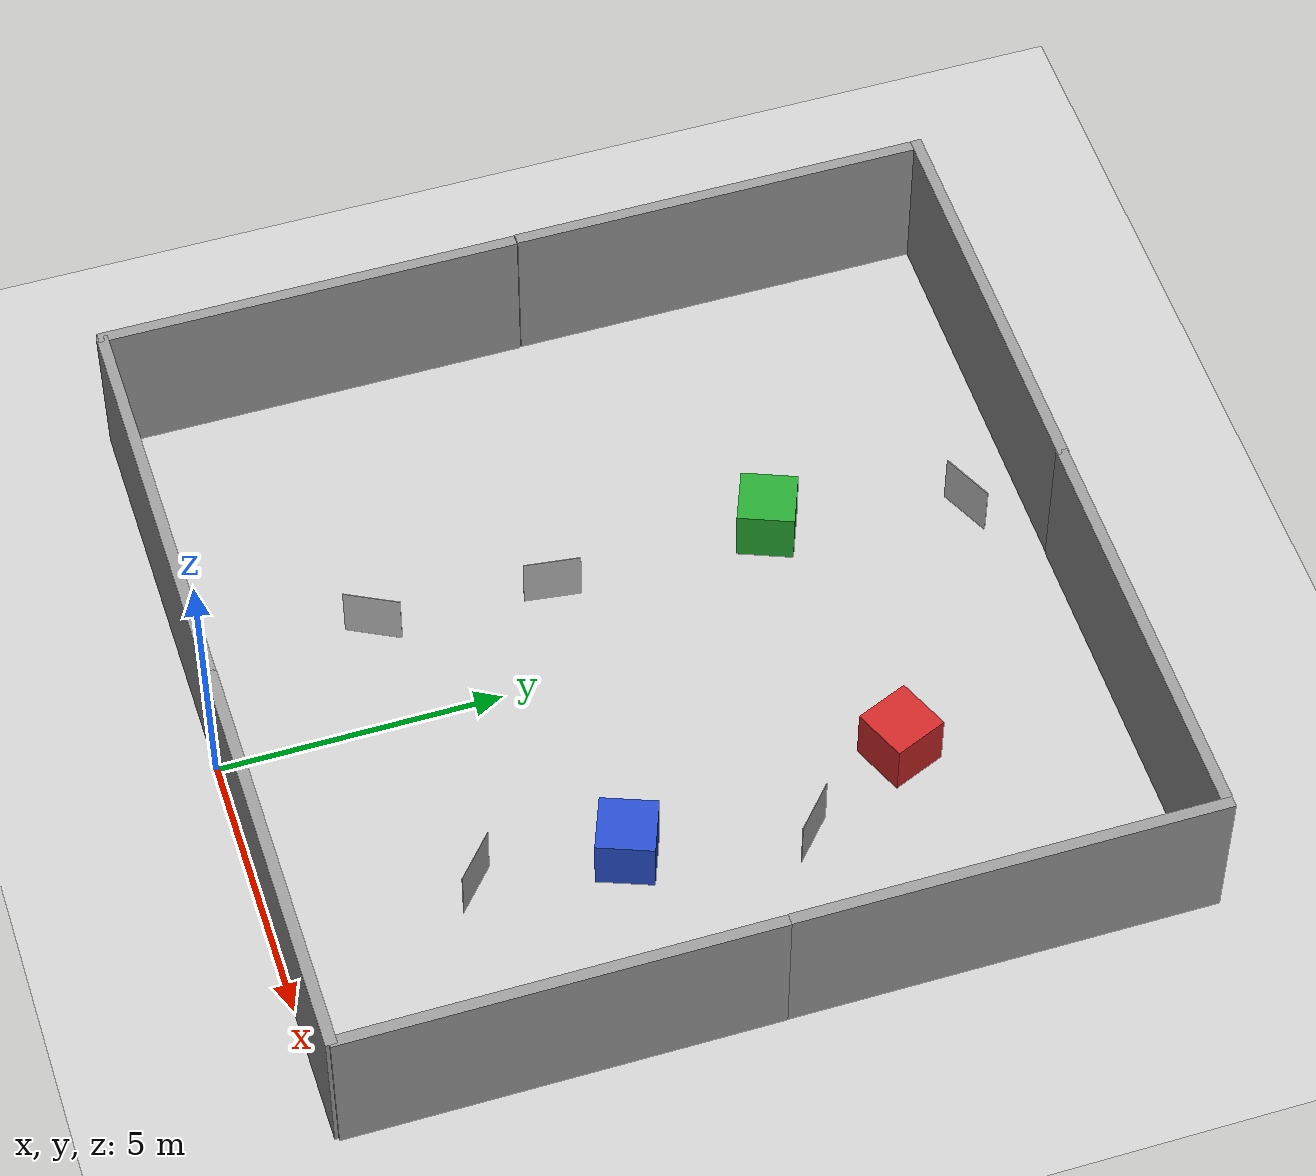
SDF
<sdf version="1.7">
 <world name="default">
  <light name="sun" type="directional">
   <pose>0 0 10 0 -0 0</pose>
   <diffuse>0.8 0.8 0.8 1</diffuse>
   <specular>0.2 0.2 0.2 1</specular>
   <attenuation>
    <range>1000</range>
    <constant>0.9</constant>
    <linear>0.01</linear>
    <quadratic>0.001</quadratic>
   </attenuation>
   <direction>-0.5 0.1 -0.9</direction>
   <spot><inner_angle>0</inner_angle><outer_angle>0</outer_angle><falloff>0</falloff></spot>
  </light>
  <model name="ground_plane">
   <static>1</static>
   <link name="link">
    <collision name="collision">
     <geometry><plane><normal>0 0 1</normal><size>100 100</size></plane></geometry>
     <surface>
      <contact><collide_bitmask>65535</collide_bitmask></contact>
      <friction><ode><mu>100</mu><mu2>50</mu2></ode></friction>
     </surface>
    </collision>
    <visual name="visual">
     <cast_shadows>0</cast_shadows>
     <geometry><plane><normal>0 0 1</normal><size>100 100</size></plane></geometry>
     <material>
      <script><uri>file://media/materials/scripts/gazebo.material</uri><name>Gazebo/Grey</name></script>
     </material>
    </visual>
   </link>
  </model>
  <gravity>0 0 -9.8</gravity>
  <magnetic_field>6e-06 2.3e-05 -4.2e-05</magnetic_field>
  <atmosphere type="adiabatic"/>
  <physics type="ode">
   <max_step_size>0.001</max_step_size>
   <real_time_factor>1</real_time_factor>
   <real_time_update_rate>1000</real_time_update_rate>
  </physics>
  <scene><ambient>0.4 0.4 0.4 1</ambient><background>0.7 0.7 0.7 1</background><shadows>1</shadows></scene>
  <spherical_coordinates>
   <surface_model>EARTH_WGS84</surface_model>
   <latitude_deg>0</latitude_deg>
   <longitude_deg>0</longitude_deg>
   <elevation>0</elevation>
   <heading_deg>0</heading_deg>
  </spherical_coordinates>
  <model name="grey_wall">
   <static>1</static>
   <link name="link">
    <pose>0 0 1.4 0 -0 0</pose>
    <collision name="collision"><geometry><box><size>7.5 0.2 2.8</size></box></geometry></collision>
    <visual name="visual">
     <cast_shadows>0</cast_shadows>
     <geometry><box><size>7.5 0.2 2.8</size></box></geometry>
     <material>
      <script>
       <uri>model://grey_wall/materials/scripts</uri>
       <uri>model://grey_wall/materials/textures</uri>
       <name>vrc/grey_wall</name>
      </script>
     </material>
    </visual>
   </link>
   <pose>3.76571 0.095145 0 0 -0 0</pose>
  </model>
  <model name="grey_wall_0">
   <static>1</static>
   <link name="link">
    <pose>0 0 1.4 0 -0 0</pose>
    <collision name="collision"><geometry><box><size>7.5 0.2 2.8</size></box></geometry></collision>
    <visual name="visual">
     <cast_shadows>0</cast_shadows>
     <geometry><box><size>7.5 0.2 2.8</size></box></geometry>
     <material>
      <script>
       <uri>model://grey_wall/materials/scripts</uri>
       <uri>model://grey_wall/materials/textures</uri>
       <name>vrc/grey_wall</name>
      </script>
     </material>
    </visual>
   </link>
   <pose>-3.71323 0.089453 0 0 -0 0</pose>
  </model>
  <model name="grey_wall_0_clone">
   <static>1</static>
   <link name="link">
    <pose>0 0 1.4 0 -0 0</pose>
    <collision name="collision"><geometry><box><size>7.5 0.2 2.8</size></box></geometry></collision>
    <visual name="visual">
     <cast_shadows>0</cast_shadows>
     <geometry><box><size>7.5 0.2 2.8</size></box></geometry>
     <material>
      <script>
       <uri>model://grey_wall/materials/scripts</uri>
       <uri>model://grey_wall/materials/textures</uri>
       <name>vrc/grey_wall</name>
      </script>
     </material>
    </visual>
   </link>
   <pose>-7.43767 3.76713 0 0 0 -1.57174</pose>
  </model>
  <model name="grey_wall_0_clone_clone">
   <static>1</static>
   <link name="link">
    <pose>0 0 1.4 0 -0 0</pose>
    <collision name="collision"><geometry><box><size>7.5 0.2 2.8</size></box></geometry></collision>
    <visual name="visual">
     <cast_shadows>0</cast_shadows>
     <geometry><box><size>7.5 0.2 2.8</size></box></geometry>
     <material>
      <script>
       <uri>model://grey_wall/materials/scripts</uri>
       <uri>model://grey_wall/materials/textures</uri>
       <name>vrc/grey_wall</name>
      </script>
     </material>
    </visual>
   </link>
   <pose>-7.44468 11.2816 0 0 0 -1.57174</pose>
  </model>
  <model name="grey_wall_0_clone_0">
   <static>1</static>
   <link name="link">
    <pose>0 0 1.4 0 -0 0</pose>
    <collision name="collision"><geometry><box><size>7.5 0.2 2.8</size></box></geometry></collision>
    <visual name="visual">
     <cast_shadows>0</cast_shadows>
     <geometry><box><size>7.5 0.2 2.8</size></box></geometry>
     <material>
      <script>
       <uri>model://grey_wall/materials/scripts</uri>
       <uri>model://grey_wall/materials/textures</uri>
       <name>vrc/grey_wall</name>
      </script>
     </material>
    </visual>
   </link>
   <pose>-3.7977 14.9733 0 0 -0 0</pose>
  </model>
  <model name="grey_wall_0_clone_1">
   <static>1</static>
   <link name="link">
    <pose>0 0 1.4 0 -0 0</pose>
    <collision name="collision"><geometry><box><size>7.5 0.2 2.8</size></box></geometry></collision>
    <visual name="visual">
     <cast_shadows>0</cast_shadows>
     <geometry><box><size>7.5 0.2 2.8</size></box></geometry>
     <material>
      <script>
       <uri>model://grey_wall/materials/scripts</uri>
       <uri>model://grey_wall/materials/textures</uri>
       <name>vrc/grey_wall</name>
      </script>
     </material>
    </visual>
   </link>
   <pose>3.61881 14.9619 0 0 -0 0</pose>
  </model>
  <model name="grey_wall_0_clone_clone_clone">
   <static>1</static>
   <link name="link">
    <pose>0 0 1.4 0 -0 0</pose>
    <collision name="collision"><geometry><box><size>7.5 0.2 2.8</size></box></geometry></collision>
    <visual name="visual">
     <cast_shadows>0</cast_shadows>
     <geometry><box><size>7.5 0.2 2.8</size></box></geometry>
     <material>
      <script>
       <uri>model://grey_wall/materials/scripts</uri>
       <uri>model://grey_wall/materials/textures</uri>
       <name>vrc/grey_wall</name>
      </script>
     </material>
    </visual>
   </link>
   <pose>7.46365 11.3004 0 0 0 -1.57174</pose>
  </model>
  <model name="grey_wall_0_clone_clone_clone_0">
   <static>1</static>
   <link name="link">
    <pose>0 0 1.4 0 -0 0</pose>
    <collision name="collision"><geometry><box><size>7.5 0.2 2.8</size></box></geometry></collision>
    <visual name="visual">
     <cast_shadows>0</cast_shadows>
     <geometry><box><size>7.5 0.2 2.8</size></box></geometry>
     <material>
      <script>
       <uri>model://grey_wall/materials/scripts</uri>
       <uri>model://grey_wall/materials/textures</uri>
       <name>vrc/grey_wall</name>
      </script>
     </material>
    </visual>
   </link>
   <pose>7.46364 3.8115 0 0 0 -1.57174</pose>
  </model>
  <model name="Red_Box">
   <link name="link">
    <inertial>
     <mass>1</mass>
     <inertia>
      <ixx>0.166667</ixx>
      <ixy>0</ixy>
      <ixz>0</ixz>
      <iyy>0.166667</iyy>
      <iyz>0</iyz>
      <izz>0.166667</izz>
     </inertia>
    </inertial>
    <pose>0 0 0 0 -0 0.393269</pose>
    <visual name="visual">
     <geometry><box><size>1 1 1</size></box></geometry>
     <material>
      <script><name>Gazebo/Red</name><uri>file://media/materials/scripts/gazebo.material</uri></script>
      <shader type="pixel"><normal_map>__default__</normal_map></shader>
      <ambient>1 0 0 1</ambient>
      <diffuse>1 0 0 1</diffuse>
      <specular>0.1 0.1 0.1 1</specular>
      <emissive>0 0 0 1</emissive>
     </material>
    </visual>
    <collision name="collision">
     <geometry><box><size>1 1 1</size></box></geometry>
     <surface>
      <friction>
       <ode><mu>1</mu><mu2>1</mu2><fdir1>0 0 0</fdir1><slip1>0</slip1><slip2>0</slip2></ode>
       <torsional>
        <coefficient>1</coefficient>
        <patch_radius>0</patch_radius>
        <surface_radius>0</surface_radius>
        <use_patch_radius>1</use_patch_radius>
        <ode><slip>0</slip></ode>
       </torsional>
      </friction>
      <bounce><restitution_coefficient>0</restitution_coefficient><threshold>1e+06</threshold></bounce>
      <contact>
       <collide_without_contact>0</collide_without_contact>
       <collide_without_contact_bitmask>1</collide_without_contact_bitmask>
       <collide_bitmask>1</collide_bitmask>
       <ode>
        <soft_cfm>0</soft_cfm>
        <soft_erp>0.2</soft_erp>
        <kp>1e+13</kp>
        <kd>1</kd>
        <max_vel>0.01</max_vel>
        <min_depth>0</min_depth>
       </ode>
       <bullet>
        <split_impulse>1</split_impulse>
        <split_impulse_penetration_threshold>-0.01</split_impulse_penetration_threshold>
        <soft_cfm>0</soft_cfm>
        <soft_erp>0.2</soft_erp>
        <kp>1e+13</kp>
        <kd>1</kd>
       </bullet>
      </contact>
     </surface>
    </collision>
   </link>
   <static>0</static>
   <pose>3.15064 11.0266 0.499995 9e-06 4e-06 -4e-06</pose>
  </model>
  <model name="Apriltag36_11_00000">
   <link name="main">
    <visual name="main_Visual">
     <geometry><box><size>1 1 0.01</size></box></geometry>
     <material>
      <script>
       <uri>model://Apriltag36_11_00000/materials/scripts</uri>
       <uri>model://Apriltag36_11_00000/materials/textures</uri>
       <name>Apriltag36_11_00000</name>
      </script>
      <shader type="pixel"/>
     </material>
    </visual>
   </link>
   <static>1</static>
   <pose>-1.95509 3.28393 0.505621 0.482204 1.56881 1.3e-05</pose>
  </model>
  <model name="Apriltag36_11_00001">
   <link name="main">
    <visual name="main_Visual">
     <geometry><box><size>1 1 0.01</size></box></geometry>
     <material>
      <script>
       <uri>model://Apriltag36_11_00001/materials/scripts</uri>
       <uri>model://Apriltag36_11_00001/materials/textures</uri>
       <name>Apriltag36_11_00001</name>
      </script>
      <shader type="pixel"/>
     </material>
    </visual>
   </link>
   <static>1</static>
   <pose>3.61877 3.48045 0.480635 4e-06 -1.56711 0.854821</pose>
  </model>
  <model name="Apriltag36_11_00003">
   <link name="main">
    <visual name="main_Visual">
     <geometry><box><size>1 1 0.01</size></box></geometry>
     <material>
      <script>
       <uri>model://Apriltag36_11_00003/materials/scripts</uri>
       <uri>model://Apriltag36_11_00003/materials/textures</uri>
       <name>Apriltag36_11_00003</name>
      </script>
      <shader type="pixel"/>
     </material>
    </visual>
   </link>
   <static>1</static>
   <pose>-1.78842 6.43714 0.491476 -3.01365 1.56828 3.14159</pose>
  </model>
  <model name="Apriltag36_11_00004">
   <link name="main">
    <visual name="main_Visual">
     <geometry><box><size>1 1 0.01</size></box></geometry>
     <material>
      <script>
       <uri>model://Apriltag36_11_00004/materials/scripts</uri>
       <uri>model://Apriltag36_11_00004/materials/textures</uri>
       <name>Apriltag36_11_00004</name>
      </script>
      <shader type="pixel"/>
     </material>
    </visual>
   </link>
   <static>1</static>
   <pose>4.34905 9.09316 0.465172 2.4e-05 -1.56884 0.837726</pose>
  </model>
  <model name="Apriltag36_11_00005">
   <link name="main">
    <visual name="main_Visual">
     <geometry><box><size>1 1 0.01</size></box></geometry>
     <material>
      <script>
       <uri>model://Apriltag36_11_00005/materials/scripts</uri>
       <uri>model://Apriltag36_11_00005/materials/textures</uri>
       <name>Apriltag36_11_00005</name>
      </script>
      <shader type="pixel"/>
     </material>
    </visual>
   </link>
   <static>1</static>
   <pose>-1.38048 13.8304 0.502502 1.56337 0 0.430413</pose>
  </model>
  <model name="Green_Box">
   <link name="link">
    <inertial>
     <mass>1</mass>
     <inertia>
      <ixx>0.166667</ixx>
      <ixy>0</ixy>
      <ixz>0</ixz>
      <iyy>0.166667</iyy>
      <iyz>0</iyz>
      <izz>0.166667</izz>
     </inertia>
    </inertial>
    <visual name="visual">
     <geometry><box><size>1 1 1</size></box></geometry>
     <material>
      <script><name>Gazebo/Green</name><uri>file://media/materials/scripts/gazebo.material</uri></script>
      <shader type="pixel"><normal_map>__default__</normal_map></shader>
      <ambient>0 1 0 1</ambient>
      <diffuse>0 1 0 1</diffuse>
      <specular>0.1 0.1 0.1 1</specular>
      <emissive>0 0 0 1</emissive>
     </material>
    </visual>
    <collision name="collision">
     <geometry><box><size>1 1 1</size></box></geometry>
     <surface>
      <friction>
       <ode><mu>1</mu><mu2>1</mu2><fdir1>0 0 0</fdir1><slip1>0</slip1><slip2>0</slip2></ode>
       <torsional>
        <coefficient>1</coefficient>
        <patch_radius>0</patch_radius>
        <surface_radius>0</surface_radius>
        <use_patch_radius>1</use_patch_radius>
        <ode><slip>0</slip></ode>
       </torsional>
      </friction>
      <bounce><restitution_coefficient>0</restitution_coefficient><threshold>1e+06</threshold></bounce>
      <contact>
       <collide_without_contact>0</collide_without_contact>
       <collide_without_contact_bitmask>1</collide_without_contact_bitmask>
       <collide_bitmask>1</collide_bitmask>
       <ode>
        <soft_cfm>0</soft_cfm>
        <soft_erp>0.2</soft_erp>
        <kp>1e+13</kp>
        <kd>1</kd>
        <max_vel>0.01</max_vel>
        <min_depth>0</min_depth>
       </ode>
       <bullet>
        <split_impulse>1</split_impulse>
        <split_impulse_penetration_threshold>-0.01</split_impulse_penetration_threshold>
        <soft_cfm>0</soft_cfm>
        <soft_erp>0.2</soft_erp>
        <kp>1e+13</kp>
        <kd>1</kd>
       </bullet>
      </contact>
     </surface>
    </collision>
   </link>
   <static>0</static>
   <pose>-1.99825 10.3927 0.5 0 0 -0.388528</pose>
  </model>
  <model name="Blue_Box">
   <link name="link">
    <inertial>
     <mass>1</mass>
     <inertia>
      <ixx>0.166667</ixx>
      <ixy>0</ixy>
      <ixz>0</ixz>
      <iyy>0.166667</iyy>
      <iyz>0</iyz>
      <izz>0.166667</izz>
     </inertia>
    </inertial>
    <visual name="visual">
     <geometry><box><size>1 1 1</size></box></geometry>
     <material>
      <script><name>Gazebo/Blue</name><uri>file://media/materials/scripts/gazebo.material</uri></script>
      <shader type="pixel"><normal_map>__default__</normal_map></shader>
      <ambient>0 0 1 1</ambient>
      <diffuse>0 0 1 1</diffuse>
      <specular>0.1 0.1 0.1 1</specular>
      <emissive>0 0 0 1</emissive>
     </material>
    </visual>
    <collision name="collision">
     <geometry><box><size>1 1 1</size></box></geometry>
     <surface>
      <friction>
       <ode><mu>1</mu><mu2>1</mu2><fdir1>0 0 0</fdir1><slip1>0</slip1><slip2>0</slip2></ode>
       <torsional>
        <coefficient>1</coefficient>
        <patch_radius>0</patch_radius>
        <surface_radius>0</surface_radius>
        <use_patch_radius>1</use_patch_radius>
        <ode><slip>0</slip></ode>
       </torsional>
      </friction>
      <bounce><restitution_coefficient>0</restitution_coefficient><threshold>1e+06</threshold></bounce>
      <contact>
       <collide_without_contact>0</collide_without_contact>
       <collide_without_contact_bitmask>1</collide_without_contact_bitmask>
       <collide_bitmask>1</collide_bitmask>
       <ode>
        <soft_cfm>0</soft_cfm>
        <soft_erp>0.2</soft_erp>
        <kp>1e+13</kp>
        <kd>1</kd>
        <max_vel>0.01</max_vel>
        <min_depth>0</min_depth>
       </ode>
       <bullet>
        <split_impulse>1</split_impulse>
        <split_impulse_penetration_threshold>-0.01</split_impulse_penetration_threshold>
        <soft_cfm>0</soft_cfm>
        <soft_erp>0.2</soft_erp>
        <kp>1e+13</kp>
        <kd>1</kd>
       </bullet>
      </contact>
     </surface>
    </collision>
   </link>
   <static>0</static>
   <pose>3.78735 6.03411 0.499995 -1e-05 0 -0.373984</pose>
  </model>
 </world>
</sdf>
